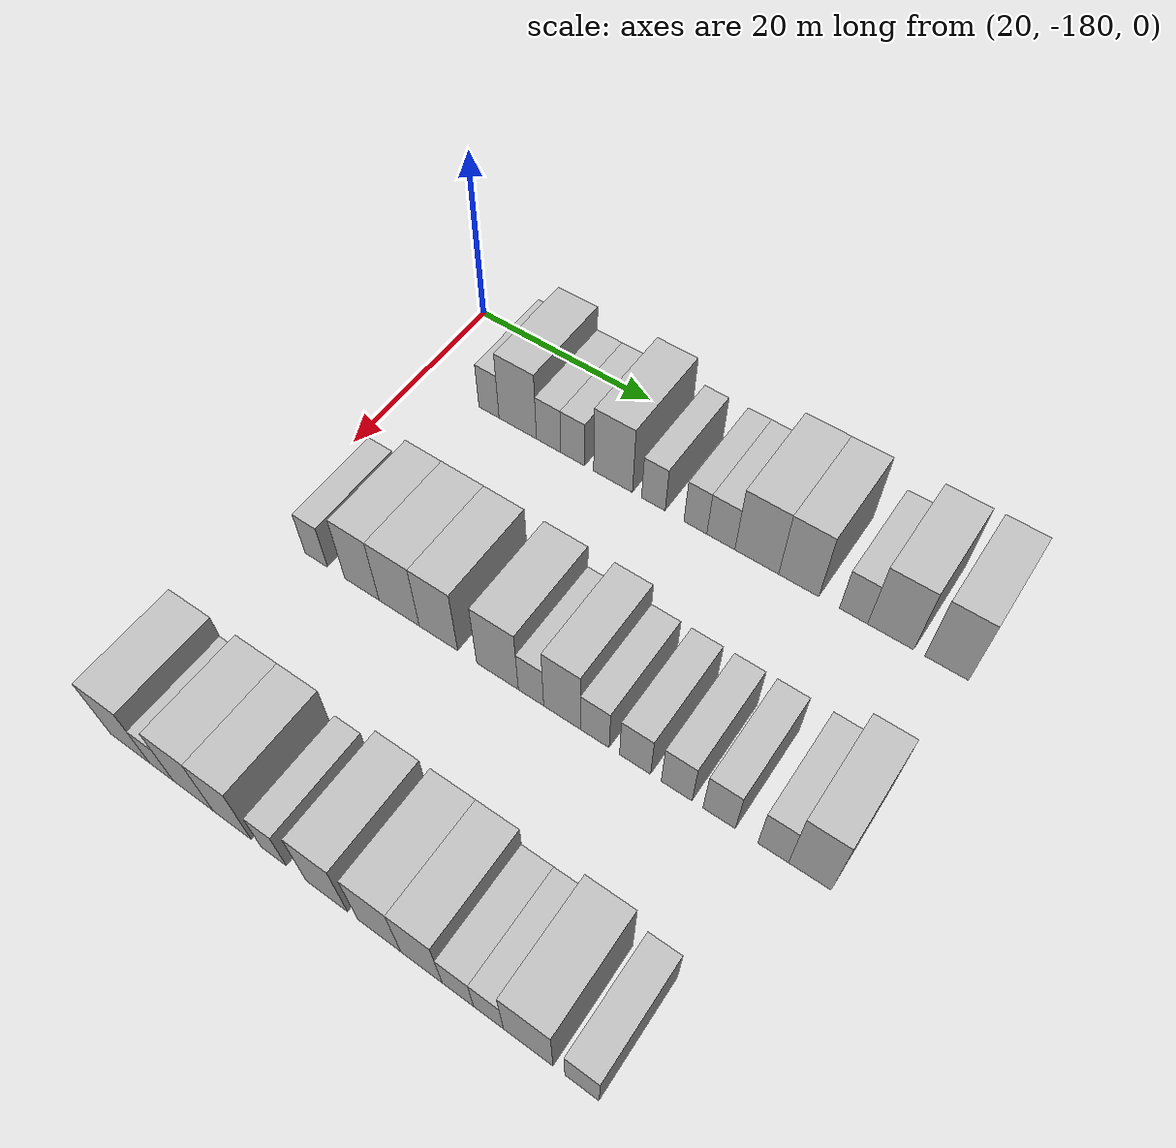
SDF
<sdf version="1.6">
 <world name="default">
  <model name="building_56">
   <static>1</static>
   <pose>25.0000 -171.7519 0 0.000000 0.000000 0.000000</pose>
   <link name="link">
    <pose>0 0 3.00 0 0 0</pose>
    <collision name="collision"><geometry><box><size>10.0000 2.4038 6.0000</size></box></geometry></collision>
    <visual name="visual">
     <cast_shadows>0</cast_shadows>
     <geometry><box><size>10.0000 2.4038 6.0000</size></box></geometry>
     <material>
      <script>
       <uri>model://HANNAS_wall/materials/scripts</uri>
       <uri>model://HANNAS_wall/materials/textures</uri>
       <name>vrc/HANNAS_wall</name>
      </script>
     </material>
    </visual>
   </link>
  </model>
  <model name="building_57">
   <static>1</static>
   <pose>25.0000 -168.3546 0 0.000000 0.000000 0.000000</pose>
   <link name="link">
    <pose>0 0 4.50 0 0 0</pose>
    <collision name="collision"><geometry><box><size>10.0000 4.3908 9.0000</size></box></geometry></collision>
    <visual name="visual">
     <cast_shadows>0</cast_shadows>
     <geometry><box><size>10.0000 4.3908 9.0000</size></box></geometry>
     <material>
      <script>
       <uri>model://HANNAS_wall/materials/scripts</uri>
       <uri>model://HANNAS_wall/materials/textures</uri>
       <name>vrc/HANNAS_wall</name>
      </script>
     </material>
    </visual>
   </link>
  </model>
  <model name="building_58">
   <static>1</static>
   <pose>25.0000 -164.7590 0 0.000000 0.000000 0.000000</pose>
   <link name="link">
    <pose>0 0 3.00 0 0 0</pose>
    <collision name="collision"><geometry><box><size>10.0000 2.8005 6.0000</size></box></geometry></collision>
    <visual name="visual">
     <cast_shadows>0</cast_shadows>
     <geometry><box><size>10.0000 2.8005 6.0000</size></box></geometry>
     <material>
      <script>
       <uri>model://HANNAS_wall/materials/scripts</uri>
       <uri>model://HANNAS_wall/materials/textures</uri>
       <name>vrc/HANNAS_wall</name>
      </script>
     </material>
    </visual>
   </link>
  </model>
  <model name="building_59">
   <static>1</static>
   <pose>25.0000 -161.9979 0 0.000000 0.000000 0.000000</pose>
   <link name="link">
    <pose>0 0 3.00 0 0 0</pose>
    <collision name="collision"><geometry><box><size>10.0000 2.7217 6.0000</size></box></geometry></collision>
    <visual name="visual">
     <cast_shadows>0</cast_shadows>
     <geometry><box><size>10.0000 2.7217 6.0000</size></box></geometry>
     <material>
      <script>
       <uri>model://HANNAS_wall/materials/scripts</uri>
       <uri>model://HANNAS_wall/materials/textures</uri>
       <name>vrc/HANNAS_wall</name>
      </script>
     </material>
    </visual>
   </link>
  </model>
  <model name="building_60">
   <static>1</static>
   <pose>25.0000 -157.4892 0 0.000000 0.000000 0.000000</pose>
   <link name="link">
    <pose>0 0 4.50 0 0 0</pose>
    <collision name="collision"><geometry><box><size>10.0000 4.2958 9.0000</size></box></geometry></collision>
    <visual name="visual">
     <cast_shadows>0</cast_shadows>
     <geometry><box><size>10.0000 4.2958 9.0000</size></box></geometry>
     <material>
      <script>
       <uri>model://HANNAS_wall/materials/scripts</uri>
       <uri>model://HANNAS_wall/materials/textures</uri>
       <name>vrc/HANNAS_wall</name>
      </script>
     </material>
    </visual>
   </link>
  </model>
  <model name="building_61">
   <static>1</static>
   <pose>25.0000 -153.0648 0 0.000000 0.000000 0.000000</pose>
   <link name="link">
    <pose>0 0 3.00 0 0 0</pose>
    <collision name="collision"><geometry><box><size>10.0000 2.5529 6.0000</size></box></geometry></collision>
    <visual name="visual">
     <cast_shadows>0</cast_shadows>
     <geometry><box><size>10.0000 2.5529 6.0000</size></box></geometry>
     <material>
      <script>
       <uri>model://HANNAS_wall/materials/scripts</uri>
       <uri>model://HANNAS_wall/materials/textures</uri>
       <name>vrc/HANNAS_wall</name>
      </script>
     </material>
    </visual>
   </link>
  </model>
  <model name="building_62">
   <static>1</static>
   <pose>25.0000 -148.5823 0 0.000000 0.000000 0.000000</pose>
   <link name="link">
    <pose>0 0 3.00 0 0 0</pose>
    <collision name="collision"><geometry><box><size>10.0000 2.4120 6.0000</size></box></geometry></collision>
    <visual name="visual">
     <cast_shadows>0</cast_shadows>
     <geometry><box><size>10.0000 2.4120 6.0000</size></box></geometry>
     <material>
      <script>
       <uri>model://HANNAS_wall/materials/scripts</uri>
       <uri>model://HANNAS_wall/materials/textures</uri>
       <name>vrc/HANNAS_wall</name>
      </script>
     </material>
    </visual>
   </link>
  </model>
  <model name="building_63">
   <static>1</static>
   <pose>25.0000 -145.9216 0 0.000000 0.000000 0.000000</pose>
   <link name="link">
    <pose>0 0 3.00 0 0 0</pose>
    <collision name="collision"><geometry><box><size>10.0000 2.9093 6.0000</size></box></geometry></collision>
    <visual name="visual">
     <cast_shadows>0</cast_shadows>
     <geometry><box><size>10.0000 2.9093 6.0000</size></box></geometry>
     <material>
      <script>
       <uri>model://HANNAS_wall/materials/scripts</uri>
       <uri>model://HANNAS_wall/materials/textures</uri>
       <name>vrc/HANNAS_wall</name>
      </script>
     </material>
    </visual>
   </link>
  </model>
  <model name="building_64">
   <static>1</static>
   <pose>25.0000 -142.2396 0 0.000000 0.000000 0.000000</pose>
   <link name="link">
    <pose>0 0 4.50 0 0 0</pose>
    <collision name="collision"><geometry><box><size>10.0000 4.4547 9.0000</size></box></geometry></collision>
    <visual name="visual">
     <cast_shadows>0</cast_shadows>
     <geometry><box><size>10.0000 4.4547 9.0000</size></box></geometry>
     <material>
      <script>
       <uri>model://HANNAS_wall/materials/scripts</uri>
       <uri>model://HANNAS_wall/materials/textures</uri>
       <name>vrc/HANNAS_wall</name>
      </script>
     </material>
    </visual>
   </link>
  </model>
  <model name="building_65">
   <static>1</static>
   <pose>25.0000 -138.0126 0 0.000000 0.000000 0.000000</pose>
   <link name="link">
    <pose>0 0 4.50 0 0 0</pose>
    <collision name="collision"><geometry><box><size>10.0000 3.9993 9.0000</size></box></geometry></collision>
    <visual name="visual">
     <cast_shadows>0</cast_shadows>
     <geometry><box><size>10.0000 3.9993 9.0000</size></box></geometry>
     <material>
      <script>
       <uri>model://HANNAS_wall/materials/scripts</uri>
       <uri>model://HANNAS_wall/materials/textures</uri>
       <name>vrc/HANNAS_wall</name>
      </script>
     </material>
    </visual>
   </link>
  </model>
  <model name="building_66">
   <static>1</static>
   <pose>25.0000 -132.6591 0 0.000000 0.000000 0.000000</pose>
   <link name="link">
    <pose>0 0 3.00 0 0 0</pose>
    <collision name="collision"><geometry><box><size>10.0000 2.7078 6.0000</size></box></geometry></collision>
    <visual name="visual">
     <cast_shadows>0</cast_shadows>
     <geometry><box><size>10.0000 2.7078 6.0000</size></box></geometry>
     <material>
      <script>
       <uri>model://HANNAS_wall/materials/scripts</uri>
       <uri>model://HANNAS_wall/materials/textures</uri>
       <name>vrc/HANNAS_wall</name>
      </script>
     </material>
    </visual>
   </link>
  </model>
  <model name="building_67">
   <static>1</static>
   <pose>25.0000 -129.1272 0 0.000000 0.000000 0.000000</pose>
   <link name="link">
    <pose>0 0 4.50 0 0 0</pose>
    <collision name="collision"><geometry><box><size>10.0000 4.3559 9.0000</size></box></geometry></collision>
    <visual name="visual">
     <cast_shadows>0</cast_shadows>
     <geometry><box><size>10.0000 4.3559 9.0000</size></box></geometry>
     <material>
      <script>
       <uri>model://HANNAS_wall/materials/scripts</uri>
       <uri>model://HANNAS_wall/materials/textures</uri>
       <name>vrc/HANNAS_wall</name>
      </script>
     </material>
    </visual>
   </link>
  </model>
  <model name="building_68">
   <static>1</static>
   <pose>25.0000 -123.9400 0 0.000000 0.000000 0.000000</pose>
   <link name="link">
    <pose>0 0 4.50 0 0 0</pose>
    <collision name="collision"><geometry><box><size>10.0000 4.0185 9.0000</size></box></geometry></collision>
    <visual name="visual">
     <cast_shadows>0</cast_shadows>
     <geometry><box><size>10.0000 4.0185 9.0000</size></box></geometry>
     <material>
      <script>
       <uri>model://HANNAS_wall/materials/scripts</uri>
       <uri>model://HANNAS_wall/materials/textures</uri>
       <name>vrc/HANNAS_wall</name>
      </script>
     </material>
    </visual>
   </link>
  </model>
  <model name="building_240">
   <static>1</static>
   <pose>47.0000 -174.1131 0 0.000000 0.000000 0.000000</pose>
   <link name="link">
    <pose>0 0 3.00 0 0 0</pose>
    <collision name="collision"><geometry><box><size>10.0000 2.5953 6.0000</size></box></geometry></collision>
    <visual name="visual">
     <cast_shadows>0</cast_shadows>
     <geometry><box><size>10.0000 2.5953 6.0000</size></box></geometry>
     <material>
      <script>
       <uri>model://HANNAS_wall/materials/scripts</uri>
       <uri>model://HANNAS_wall/materials/textures</uri>
       <name>vrc/HANNAS_wall</name>
      </script>
     </material>
    </visual>
   </link>
  </model>
  <model name="building_241">
   <static>1</static>
   <pose>47.0000 -168.8720 0 0.000000 0.000000 0.000000</pose>
   <link name="link">
    <pose>0 0 4.50 0 0 0</pose>
    <collision name="collision"><geometry><box><size>10.0000 3.8868 9.0000</size></box></geometry></collision>
    <visual name="visual">
     <cast_shadows>0</cast_shadows>
     <geometry><box><size>10.0000 3.8868 9.0000</size></box></geometry>
     <material>
      <script>
       <uri>model://HANNAS_wall/materials/scripts</uri>
       <uri>model://HANNAS_wall/materials/textures</uri>
       <name>vrc/HANNAS_wall</name>
      </script>
     </material>
    </visual>
   </link>
  </model>
  <model name="building_242">
   <static>1</static>
   <pose>47.0000 -164.7085 0 0.000000 0.000000 0.000000</pose>
   <link name="link">
    <pose>0 0 4.50 0 0 0</pose>
    <collision name="collision"><geometry><box><size>10.0000 4.4403 9.0000</size></box></geometry></collision>
    <visual name="visual">
     <cast_shadows>0</cast_shadows>
     <geometry><box><size>10.0000 4.4403 9.0000</size></box></geometry>
     <material>
      <script>
       <uri>model://HANNAS_wall/materials/scripts</uri>
       <uri>model://HANNAS_wall/materials/textures</uri>
       <name>vrc/HANNAS_wall</name>
      </script>
     </material>
    </visual>
   </link>
  </model>
  <model name="building_243">
   <static>1</static>
   <pose>47.0000 -160.4121 0 0.000000 0.000000 0.000000</pose>
   <link name="link">
    <pose>0 0 4.50 0 0 0</pose>
    <collision name="collision"><geometry><box><size>10.0000 4.1526 9.0000</size></box></geometry></collision>
    <visual name="visual">
     <cast_shadows>0</cast_shadows>
     <geometry><box><size>10.0000 4.1526 9.0000</size></box></geometry>
     <material>
      <script>
       <uri>model://HANNAS_wall/materials/scripts</uri>
       <uri>model://HANNAS_wall/materials/textures</uri>
       <name>vrc/HANNAS_wall</name>
      </script>
     </material>
    </visual>
   </link>
  </model>
  <model name="building_244">
   <static>1</static>
   <pose>47.0000 -154.1732 0 0.000000 0.000000 0.000000</pose>
   <link name="link">
    <pose>0 0 4.50 0 0 0</pose>
    <collision name="collision"><geometry><box><size>10.0000 4.3251 9.0000</size></box></geometry></collision>
    <visual name="visual">
     <cast_shadows>0</cast_shadows>
     <geometry><box><size>10.0000 4.3251 9.0000</size></box></geometry>
     <material>
      <script>
       <uri>model://HANNAS_wall/materials/scripts</uri>
       <uri>model://HANNAS_wall/materials/textures</uri>
       <name>vrc/HANNAS_wall</name>
      </script>
     </material>
    </visual>
   </link>
  </model>
  <model name="building_245">
   <static>1</static>
   <pose>47.0000 -150.7242 0 0.000000 0.000000 0.000000</pose>
   <link name="link">
    <pose>0 0 3.00 0 0 0</pose>
    <collision name="collision"><geometry><box><size>10.0000 2.5729 6.0000</size></box></geometry></collision>
    <visual name="visual">
     <cast_shadows>0</cast_shadows>
     <geometry><box><size>10.0000 2.5729 6.0000</size></box></geometry>
     <material>
      <script>
       <uri>model://HANNAS_wall/materials/scripts</uri>
       <uri>model://HANNAS_wall/materials/textures</uri>
       <name>vrc/HANNAS_wall</name>
      </script>
     </material>
    </visual>
   </link>
  </model>
  <model name="building_246">
   <static>1</static>
   <pose>47.0000 -147.6063 0 0.000000 0.000000 0.000000</pose>
   <link name="link">
    <pose>0 0 4.50 0 0 0</pose>
    <collision name="collision"><geometry><box><size>10.0000 3.6629 9.0000</size></box></geometry></collision>
    <visual name="visual">
     <cast_shadows>0</cast_shadows>
     <geometry><box><size>10.0000 3.6629 9.0000</size></box></geometry>
     <material>
      <script>
       <uri>model://HANNAS_wall/materials/scripts</uri>
       <uri>model://HANNAS_wall/materials/textures</uri>
       <name>vrc/HANNAS_wall</name>
      </script>
     </material>
    </visual>
   </link>
  </model>
  <model name="building_247">
   <static>1</static>
   <pose>47.0000 -144.3744 0 0.000000 0.000000 0.000000</pose>
   <link name="link">
    <pose>0 0 3.00 0 0 0</pose>
    <collision name="collision"><geometry><box><size>10.0000 2.8009 6.0000</size></box></geometry></collision>
    <visual name="visual">
     <cast_shadows>0</cast_shadows>
     <geometry><box><size>10.0000 2.8009 6.0000</size></box></geometry>
     <material>
      <script>
       <uri>model://HANNAS_wall/materials/scripts</uri>
       <uri>model://HANNAS_wall/materials/textures</uri>
       <name>vrc/HANNAS_wall</name>
      </script>
     </material>
    </visual>
   </link>
  </model>
  <model name="building_248">
   <static>1</static>
   <pose>47.0000 -140.4943 0 0.000000 0.000000 0.000000</pose>
   <link name="link">
    <pose>0 0 3.00 0 0 0</pose>
    <collision name="collision"><geometry><box><size>10.0000 2.9593 6.0000</size></box></geometry></collision>
    <visual name="visual">
     <cast_shadows>0</cast_shadows>
     <geometry><box><size>10.0000 2.9593 6.0000</size></box></geometry>
     <material>
      <script>
       <uri>model://HANNAS_wall/materials/scripts</uri>
       <uri>model://HANNAS_wall/materials/textures</uri>
       <name>vrc/HANNAS_wall</name>
      </script>
     </material>
    </visual>
   </link>
  </model>
  <model name="building_249">
   <static>1</static>
   <pose>47.0000 -136.5808 0 0.000000 0.000000 0.000000</pose>
   <link name="link">
    <pose>0 0 3.00 0 0 0</pose>
    <collision name="collision"><geometry><box><size>10.0000 2.8676 6.0000</size></box></geometry></collision>
    <visual name="visual">
     <cast_shadows>0</cast_shadows>
     <geometry><box><size>10.0000 2.8676 6.0000</size></box></geometry>
     <material>
      <script>
       <uri>model://HANNAS_wall/materials/scripts</uri>
       <uri>model://HANNAS_wall/materials/textures</uri>
       <name>vrc/HANNAS_wall</name>
      </script>
     </material>
    </visual>
   </link>
  </model>
  <model name="building_250">
   <static>1</static>
   <pose>47.0000 -132.6794 0 0.000000 0.000000 0.000000</pose>
   <link name="link">
    <pose>0 0 3.00 0 0 0</pose>
    <collision name="collision"><geometry><box><size>10.0000 2.9351 6.0000</size></box></geometry></collision>
    <visual name="visual">
     <cast_shadows>0</cast_shadows>
     <geometry><box><size>10.0000 2.9351 6.0000</size></box></geometry>
     <material>
      <script>
       <uri>model://HANNAS_wall/materials/scripts</uri>
       <uri>model://HANNAS_wall/materials/textures</uri>
       <name>vrc/HANNAS_wall</name>
      </script>
     </material>
    </visual>
   </link>
  </model>
  <model name="building_251">
   <static>1</static>
   <pose>47.0000 -127.8619 0 0.000000 0.000000 0.000000</pose>
   <link name="link">
    <pose>0 0 3.00 0 0 0</pose>
    <collision name="collision"><geometry><box><size>10.0000 2.7000 6.0000</size></box></geometry></collision>
    <visual name="visual">
     <cast_shadows>0</cast_shadows>
     <geometry><box><size>10.0000 2.7000 6.0000</size></box></geometry>
     <material>
      <script>
       <uri>model://HANNAS_wall/materials/scripts</uri>
       <uri>model://HANNAS_wall/materials/textures</uri>
       <name>vrc/HANNAS_wall</name>
      </script>
     </material>
    </visual>
   </link>
  </model>
  <model name="building_252">
   <static>1</static>
   <pose>47.0000 -124.6702 0 0.000000 0.000000 0.000000</pose>
   <link name="link">
    <pose>0 0 4.50 0 0 0</pose>
    <collision name="collision"><geometry><box><size>10.0000 3.6834 9.0000</size></box></geometry></collision>
    <visual name="visual">
     <cast_shadows>0</cast_shadows>
     <geometry><box><size>10.0000 3.6834 9.0000</size></box></geometry>
     <material>
      <script>
       <uri>model://HANNAS_wall/materials/scripts</uri>
       <uri>model://HANNAS_wall/materials/textures</uri>
       <name>vrc/HANNAS_wall</name>
      </script>
     </material>
    </visual>
   </link>
  </model>
  <model name="building_435">
   <static>1</static>
   <pose>69.0000 -174.4017 0 0.000000 0.000000 0.000000</pose>
   <link name="link">
    <pose>0 0 4.50 0 0 0</pose>
    <collision name="collision"><geometry><box><size>10.0000 4.4218 9.0000</size></box></geometry></collision>
    <visual name="visual">
     <cast_shadows>0</cast_shadows>
     <geometry><box><size>10.0000 4.4218 9.0000</size></box></geometry>
     <material>
      <script>
       <uri>model://HANNAS_wall/materials/scripts</uri>
       <uri>model://HANNAS_wall/materials/textures</uri>
       <name>vrc/HANNAS_wall</name>
      </script>
     </material>
    </visual>
   </link>
  </model>
  <model name="building_436">
   <static>1</static>
   <pose>69.0000 -170.8653 0 0.000000 0.000000 0.000000</pose>
   <link name="link">
    <pose>0 0 3.00 0 0 0</pose>
    <collision name="collision"><geometry><box><size>10.0000 2.6510 6.0000</size></box></geometry></collision>
    <visual name="visual">
     <cast_shadows>0</cast_shadows>
     <geometry><box><size>10.0000 2.6510 6.0000</size></box></geometry>
     <material>
      <script>
       <uri>model://HANNAS_wall/materials/scripts</uri>
       <uri>model://HANNAS_wall/materials/textures</uri>
       <name>vrc/HANNAS_wall</name>
      </script>
     </material>
    </visual>
   </link>
  </model>
  <model name="building_437">
   <static>1</static>
   <pose>69.0000 -167.3984 0 0.000000 0.000000 0.000000</pose>
   <link name="link">
    <pose>0 0 4.50 0 0 0</pose>
    <collision name="collision"><geometry><box><size>10.0000 4.2828 9.0000</size></box></geometry></collision>
    <visual name="visual">
     <cast_shadows>0</cast_shadows>
     <geometry><box><size>10.0000 4.2828 9.0000</size></box></geometry>
     <material>
      <script>
       <uri>model://HANNAS_wall/materials/scripts</uri>
       <uri>model://HANNAS_wall/materials/textures</uri>
       <name>vrc/HANNAS_wall</name>
      </script>
     </material>
    </visual>
   </link>
  </model>
  <model name="building_438">
   <static>1</static>
   <pose>69.0000 -163.2356 0 0.000000 0.000000 0.000000</pose>
   <link name="link">
    <pose>0 0 4.50 0 0 0</pose>
    <collision name="collision"><geometry><box><size>10.0000 4.0429 9.0000</size></box></geometry></collision>
    <visual name="visual">
     <cast_shadows>0</cast_shadows>
     <geometry><box><size>10.0000 4.0429 9.0000</size></box></geometry>
     <material>
      <script>
       <uri>model://HANNAS_wall/materials/scripts</uri>
       <uri>model://HANNAS_wall/materials/textures</uri>
       <name>vrc/HANNAS_wall</name>
      </script>
     </material>
    </visual>
   </link>
  </model>
  <model name="building_439">
   <static>1</static>
   <pose>69.0000 -158.9192 0 0.000000 0.000000 0.000000</pose>
   <link name="link">
    <pose>0 0 3.00 0 0 0</pose>
    <collision name="collision"><geometry><box><size>10.0000 2.5898 6.0000</size></box></geometry></collision>
    <visual name="visual">
     <cast_shadows>0</cast_shadows>
     <geometry><box><size>10.0000 2.5898 6.0000</size></box></geometry>
     <material>
      <script>
       <uri>model://HANNAS_wall/materials/scripts</uri>
       <uri>model://HANNAS_wall/materials/textures</uri>
       <name>vrc/HANNAS_wall</name>
      </script>
     </material>
    </visual>
   </link>
  </model>
  <model name="building_440">
   <static>1</static>
   <pose>69.0000 -153.5731 0 0.000000 0.000000 0.000000</pose>
   <link name="link">
    <pose>0 0 4.50 0 0 0</pose>
    <collision name="collision"><geometry><box><size>10.0000 4.1025 9.0000</size></box></geometry></collision>
    <visual name="visual">
     <cast_shadows>0</cast_shadows>
     <geometry><box><size>10.0000 4.1025 9.0000</size></box></geometry>
     <material>
      <script>
       <uri>model://HANNAS_wall/materials/scripts</uri>
       <uri>model://HANNAS_wall/materials/textures</uri>
       <name>vrc/HANNAS_wall</name>
      </script>
     </material>
    </visual>
   </link>
  </model>
  <model name="building_441">
   <static>1</static>
   <pose>69.0000 -148.4669 0 0.000000 0.000000 0.000000</pose>
   <link name="link">
    <pose>0 0 4.50 0 0 0</pose>
    <collision name="collision"><geometry><box><size>10.0000 4.1098 9.0000</size></box></geometry></collision>
    <visual name="visual">
     <cast_shadows>0</cast_shadows>
     <geometry><box><size>10.0000 4.1098 9.0000</size></box></geometry>
     <material>
      <script>
       <uri>model://HANNAS_wall/materials/scripts</uri>
       <uri>model://HANNAS_wall/materials/textures</uri>
       <name>vrc/HANNAS_wall</name>
      </script>
     </material>
    </visual>
   </link>
  </model>
  <model name="building_442">
   <static>1</static>
   <pose>69.0000 -144.4879 0 0.000000 0.000000 0.000000</pose>
   <link name="link">
    <pose>0 0 4.50 0 0 0</pose>
    <collision name="collision"><geometry><box><size>10.0000 3.8481 9.0000</size></box></geometry></collision>
    <visual name="visual">
     <cast_shadows>0</cast_shadows>
     <geometry><box><size>10.0000 3.8481 9.0000</size></box></geometry>
     <material>
      <script>
       <uri>model://HANNAS_wall/materials/scripts</uri>
       <uri>model://HANNAS_wall/materials/textures</uri>
       <name>vrc/HANNAS_wall</name>
      </script>
     </material>
    </visual>
   </link>
  </model>
  <model name="building_443">
   <static>1</static>
   <pose>69.0000 -141.1334 0 0.000000 0.000000 0.000000</pose>
   <link name="link">
    <pose>0 0 3.00 0 0 0</pose>
    <collision name="collision"><geometry><box><size>10.0000 2.8609 6.0000</size></box></geometry></collision>
    <visual name="visual">
     <cast_shadows>0</cast_shadows>
     <geometry><box><size>10.0000 2.8609 6.0000</size></box></geometry>
     <material>
      <script>
       <uri>model://HANNAS_wall/materials/scripts</uri>
       <uri>model://HANNAS_wall/materials/textures</uri>
       <name>vrc/HANNAS_wall</name>
      </script>
     </material>
    </visual>
   </link>
  </model>
  <model name="building_444">
   <static>1</static>
   <pose>69.0000 -138.3751 0 0.000000 0.000000 0.000000</pose>
   <link name="link">
    <pose>0 0 3.00 0 0 0</pose>
    <collision name="collision"><geometry><box><size>10.0000 2.6559 6.0000</size></box></geometry></collision>
    <visual name="visual">
     <cast_shadows>0</cast_shadows>
     <geometry><box><size>10.0000 2.6559 6.0000</size></box></geometry>
     <material>
      <script>
       <uri>model://HANNAS_wall/materials/scripts</uri>
       <uri>model://HANNAS_wall/materials/textures</uri>
       <name>vrc/HANNAS_wall</name>
      </script>
     </material>
    </visual>
   </link>
  </model>
  <model name="building_445">
   <static>1</static>
   <pose>69.0000 -134.9004 0 0.000000 0.000000 0.000000</pose>
   <link name="link">
    <pose>0 0 4.50 0 0 0</pose>
    <collision name="collision"><geometry><box><size>10.0000 4.2935 9.0000</size></box></geometry></collision>
    <visual name="visual">
     <cast_shadows>0</cast_shadows>
     <geometry><box><size>10.0000 4.2935 9.0000</size></box></geometry>
     <material>
      <script>
       <uri>model://HANNAS_wall/materials/scripts</uri>
       <uri>model://HANNAS_wall/materials/textures</uri>
       <name>vrc/HANNAS_wall</name>
      </script>
     </material>
    </visual>
   </link>
  </model>
  <model name="building_446">
   <static>1</static>
   <pose>69.0000 -130.3149 0 0.000000 0.000000 0.000000</pose>
   <link name="link">
    <pose>0 0 3.00 0 0 0</pose>
    <collision name="collision"><geometry><box><size>10.0000 2.8776 6.0000</size></box></geometry></collision>
    <visual name="visual">
     <cast_shadows>0</cast_shadows>
     <geometry><box><size>10.0000 2.8776 6.0000</size></box></geometry>
     <material>
      <script>
       <uri>model://HANNAS_wall/materials/scripts</uri>
       <uri>model://HANNAS_wall/materials/textures</uri>
       <name>vrc/HANNAS_wall</name>
      </script>
     </material>
    </visual>
   </link>
  </model>
 </world>
</sdf>
